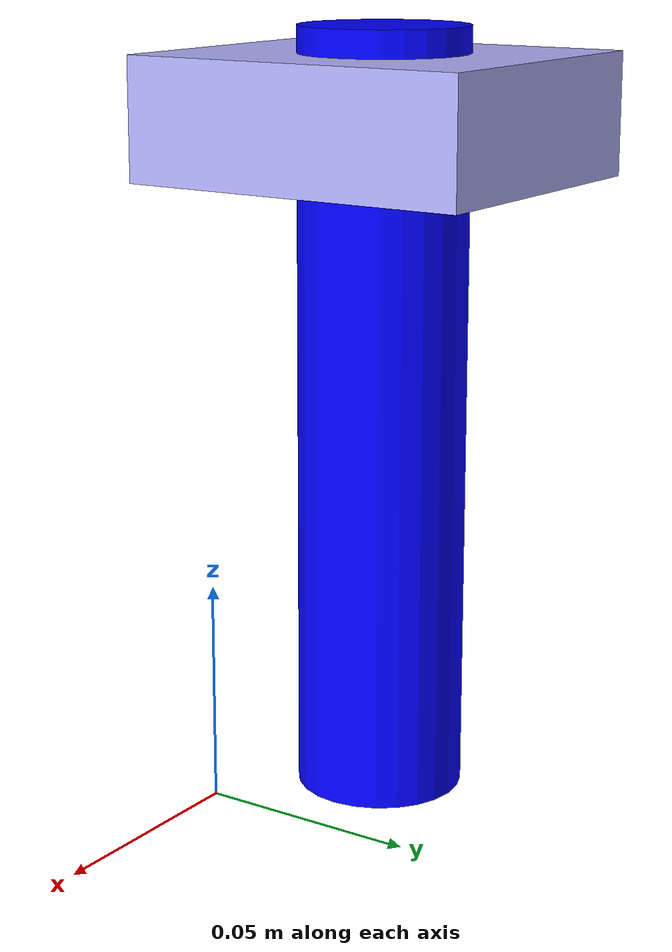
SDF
<?xml version='1.0'?>
<sdf version='1.7'>
  <model name='cilindro_azul'>
    <link name='link_0_0'>
      <inertial>
        <mass>0.00012262</mass>
        <inertia>
          <ixx>6e-08</ixx>
          <ixy>0</ixy>
          <ixz>0</ixz>
          <iyy>5e-08</iyy>
          <iyz>0</iyz>
          <izz>1e-07</izz>
        </inertia>
        <pose>0 0 0 0 -0 0</pose>
      </inertial>
      <pose>-0 0.043008 0.157251 0 -0 0</pose>
      <gravity>1</gravity>
      <self_collide>0</self_collide>
      <kinematic>0</kinematic>
      <enable_wind>0</enable_wind>
      <visual name='visual'>
        <pose>0 0 0 0 -0 0</pose>
        <geometry>
          <box>
            <size>0.06472 0.075173 0.025188</size>
          </box>
        </geometry>
        <material>
          <lighting>1</lighting>
          <script>
            <uri>file://media/materials/scripts/gazebo.material</uri>
            <name>Gazebo/Grey</name>
          </script>
          <shader type='pixel'>
            <normal_map>__default__</normal_map>
          </shader>
          <ambient>0 0 1 0</ambient>
          <diffuse>0.7 0.7 1 1</diffuse>
          <specular>0.01 0.01 1 1</specular>
          <emissive>0 0 0 1</emissive>
        </material>
        <transparency>0</transparency>
        <cast_shadows>1</cast_shadows>
      </visual>
      <collision name='collision'>
        <laser_retro>0</laser_retro>
        <max_contacts>10</max_contacts>
        <pose>0 0 0 0 -0 0</pose>
        <geometry>
          <box>
            <size>0.06472 0.075173 0.025188</size>
          </box>
        </geometry>
        <surface>
          <friction>
            <ode>
              <mu>1</mu>
              <mu2>1</mu2>
              <fdir1>0 0 0</fdir1>
              <slip1>0</slip1>
              <slip2>0</slip2>
            </ode>
            <torsional>
              <coefficient>1</coefficient>
              <patch_radius>0</patch_radius>
              <surface_radius>0</surface_radius>
              <use_patch_radius>1</use_patch_radius>
              <ode>
                <slip>0</slip>
              </ode>
            </torsional>
          </friction>
          <bounce>
            <restitution_coefficient>0</restitution_coefficient>
            <threshold>1e+06</threshold>
          </bounce>
          <contact>
            <collide_without_contact>0</collide_without_contact>
            <collide_without_contact_bitmask>1</collide_without_contact_bitmask>
            <collide_bitmask>1</collide_bitmask>
            <ode>
              <soft_cfm>0</soft_cfm>
              <soft_erp>0.2</soft_erp>
              <kp>1e+13</kp>
              <kd>1</kd>
              <max_vel>0.01</max_vel>
              <min_depth>0</min_depth>
            </ode>
            <bullet>
              <split_impulse>1</split_impulse>
              <split_impulse_penetration_threshold>-0.01</split_impulse_penetration_threshold>
              <soft_cfm>0</soft_cfm>
              <soft_erp>0.2</soft_erp>
              <kp>1e+13</kp>
              <kd>1</kd>
            </bullet>
          </contact>
        </surface>
      </collision>
    </link>
    <link name='link_0_clone_0'>
      <inertial>
        <mass>0.00019435</mass>
        <inertia>
          <ixx>4.3e-07</ixx>
          <ixy>0</ixy>
          <ixz>0</ixz>
          <iyy>4.3e-07</iyy>
          <iyz>0</iyz>
          <izz>3e-08</izz>
        </inertia>
        <pose>0 0 0 0 -0 0</pose>
      </inertial>
      <pose>-0 0.044461 0.095585 0 -0 0</pose>
      <gravity>1</gravity>
      <self_collide>0</self_collide>
      <kinematic>0</kinematic>
      <enable_wind>0</enable_wind>
      <visual name='visual'>
        <pose>0 0 0 0 -0 0</pose>
        <geometry>
          <cylinder>
            <radius>0.0174297</radius>
            <length>0.159571</length>
          </cylinder>
        </geometry>
        <material>
          <lighting>1</lighting>
          <script>
            <uri>file://media/materials/scripts/gazebo.material</uri>
            <name>Gazebo/Grey</name>
          </script>
          <shader type='pixel'>
            <normal_map>__default__</normal_map>
          </shader>
          <ambient>0 0 1 1</ambient>
          <diffuse>0 0 1 1</diffuse>
          <specular>0 0 1 1</specular>
          <emissive>0 0 0 1</emissive>
        </material>
        <transparency>0</transparency>
        <cast_shadows>1</cast_shadows>
      </visual>
      <collision name='collision'>
        <laser_retro>0</laser_retro>
        <max_contacts>10</max_contacts>
        <pose>0 0 0 0 -0 0</pose>
        <geometry>
          <cylinder>
            <radius>0.017429</radius>
            <length>0.159571</length>
          </cylinder>
        </geometry>
        <surface>
          <friction>
            <ode>
              <mu>0.00100883</mu>
              <mu2>0.00100883</mu2>
              <fdir1>0 0 0</fdir1>
              <slip1>0</slip1>
              <slip2>0</slip2>
            </ode>
            <torsional>
              <coefficient>1</coefficient>
              <patch_radius>0</patch_radius>
              <surface_radius>0</surface_radius>
              <use_patch_radius>1</use_patch_radius>
              <ode>
                <slip>0</slip>
              </ode>
            </torsional>
          </friction>
          <bounce>
            <restitution_coefficient>0</restitution_coefficient>
            <threshold>1e+06</threshold>
          </bounce>
          <contact>
            <collide_without_contact>0</collide_without_contact>
            <collide_without_contact_bitmask>1</collide_without_contact_bitmask>
            <collide_bitmask>1</collide_bitmask>
            <ode>
              <soft_cfm>0</soft_cfm>
              <soft_erp>0.2</soft_erp>
              <kp>1e+13</kp>
              <kd>1</kd>
              <max_vel>0.01</max_vel>
              <min_depth>0</min_depth>
            </ode>
            <bullet>
              <split_impulse>1</split_impulse>
              <split_impulse_penetration_threshold>-0.01</split_impulse_penetration_threshold>
              <soft_cfm>0</soft_cfm>
              <soft_erp>0.2</soft_erp>
              <kp>1e+13</kp>
              <kd>1</kd>
            </bullet>
          </contact>
        </surface>
      </collision>
    </link>
    <joint name='link_0_0_JOINT_1' type='fixed'>
      <parent>link_0_0</parent>
      <child>link_0_clone_0</child>
      <pose>0 0 0 0 -0 0</pose>
      <physics>
        <ode>
          <limit>
            <cfm>0</cfm>
            <erp>0.2</erp>
          </limit>
          <suspension>
            <cfm>0</cfm>
            <erp>0.2</erp>
          </suspension>
        </ode>
      </physics>
    </joint>
    <static>0</static>
    <allow_auto_disable>1</allow_auto_disable>
  </model>
</sdf>
